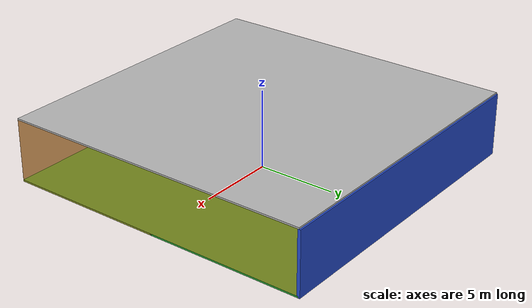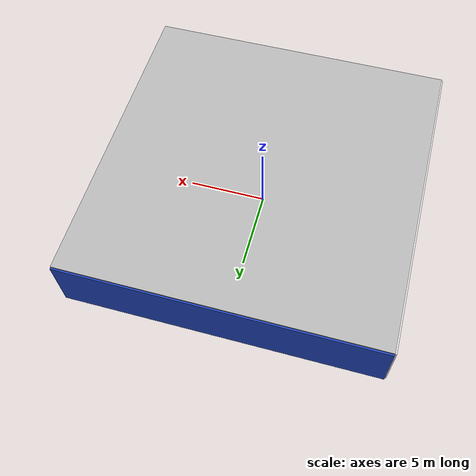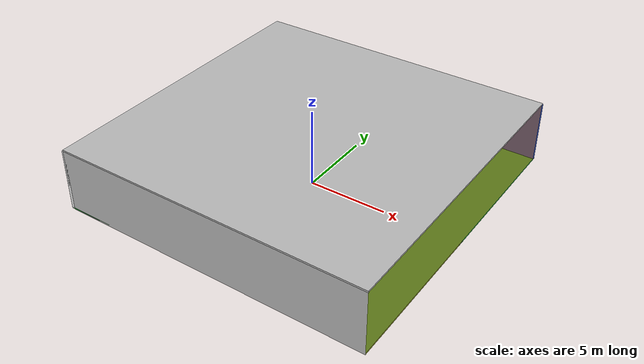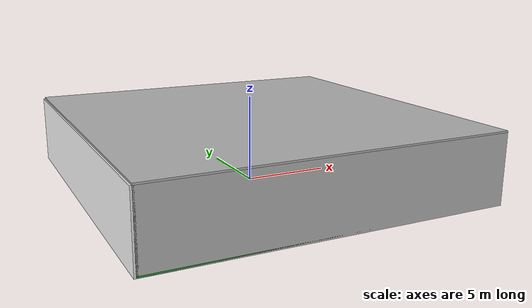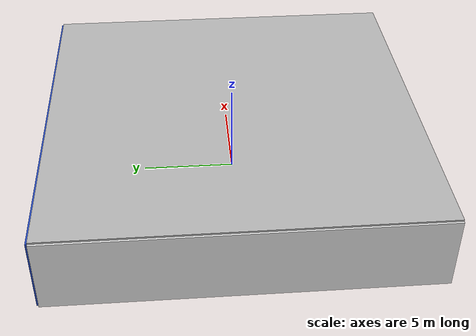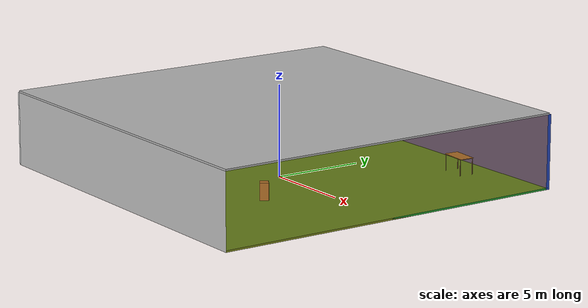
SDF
<sdf version="1.4">
 <world name="default">
  <physics type="ode">
   <max_step_size>0.001</max_step_size>
   <real_time_factor>1</real_time_factor>
   <real_time_update_rate>1000</real_time_update_rate>
   <gravity>0 0 -9.8</gravity>
  </physics>
  <scene><ambient>0.4 0.4 0.4 1</ambient><background>0.7 0.7 0.7 1</background><shadows>1</shadows></scene>
  <model name="Surrounding">
   <static>1</static>
   <link name="Ceiling">
    <collision name="Ceiling_Collision"><geometry><box><size>20 20 0.1</size></box></geometry></collision>
    <visual name="Ceiling_Visual">
     <geometry><box><size>20 20 0.1</size></box></geometry>
     <material>
      <script><uri>file://media/materials/scripts/gazebo.material</uri><name>Gazebo/LightOff</name></script>
     </material>
    </visual>
    <pose>0 0 4.05 0 0 0</pose>
   </link>
   <link name="Wall_South">
    <collision name="Wall_South_Collision">
     <geometry><box><size>20 0 4</size></box></geometry>
     <pose>0 0 2 0 -0 0</pose>
    </collision>
    <visual name="Wall_South_Visual">
     <pose>0 0 2 0 -0 0</pose>
     <geometry><box><size>20 0 4</size></box></geometry>
     <material>
      <script><uri>file://media/materials/scripts/gazebo.material</uri><name>Gazebo/CloudySky</name></script>
     </material>
    </visual>
    <velocity_decay><linear>0</linear><angular>0</angular></velocity_decay>
    <pose>0 -10 0 0 -0 0</pose>
   </link>
   <link name="Wall_East">
    <collision name="Wall_21_Collision">
     <geometry><box><size>20 0 4</size></box></geometry>
     <pose>0 0 2 0 -0 0</pose>
    </collision>
    <visual name="Wall_21_Visual">
     <pose>0 0 2 0 -0 0</pose>
     <geometry><box><size>20 0 4</size></box></geometry>
     <material>
      <script>
       <uri>file://media/materials/scripts/gazebo.material</uri>
       <name>Gazebo/OrangeTransparent</name>
      </script>
     </material>
    </visual>
    <velocity_decay><linear>0</linear><angular>0</angular></velocity_decay>
    <pose>10 0 0 0 -0 1.5708</pose>
   </link>
   <link name="Wall_North">
    <collision name="Wall_22_Collision">
     <geometry><box><size>20 0.2 4</size></box></geometry>
     <pose>0 0 2 0 -0 0</pose>
    </collision>
    <visual name="Wall_22_Visual">
     <pose>0 0 2 0 -0 0</pose>
     <geometry><box><size>20 0.2 4</size></box></geometry>
     <material>
      <script><uri>file://media/materials/scripts/gazebo.material</uri><name>Gazebo/BlueLaser</name></script>
     </material>
    </visual>
    <velocity_decay><linear>0</linear><angular>0</angular></velocity_decay>
    <pose>0 10 0 0 -0 0</pose>
   </link>
   <link name="Wall_West">
    <collision name="Wall_23_Collision">
     <geometry><box><size>20 0.2 4</size></box></geometry>
     <pose>0 0 2 0 -0 0</pose>
    </collision>
    <visual name="Wall_23_Visual">
     <pose>0 0 2 0 -0 0</pose>
     <geometry><box><size>20 0.2 4</size></box></geometry>
     <material>
      <script><uri>file://media/materials/scripts/gazebo.material</uri><name>Gazebo/WhiteGlow</name></script>
     </material>
    </visual>
    <velocity_decay><linear>0</linear><angular>0</angular></velocity_decay>
    <pose>-10 0 0 0 0 -1.5708</pose>
   </link>
   <link name="Ground_link">
    <collision name="collision">
     <pose>0 0 .05 0 -0 0</pose>
     <geometry><box><size>20 20 0.1</size></box></geometry>
    </collision>
    <visual name="visual">
     <pose>0 0 .05 0 -0 0</pose>
     <geometry><box><size>20 20 0.1</size></box></geometry>
     <material>
      <script><uri>file://media/materials/scripts/gazebo.material</uri><name>Gazebo/Green</name></script>
     </material>
    </visual>
   </link>
   <static>1</static>
  </model>
  <spherical_coordinates>
   <surface_model>EARTH_WGS84</surface_model>
   <latitude_deg>0</latitude_deg>
   <longitude_deg>0</longitude_deg>
   <elevation>0</elevation>
   <heading_deg>0</heading_deg>
  </spherical_coordinates>
  <light name="lightball_0" type="diffuse">
   <diffuse>0.8 0.8 0.8 1</diffuse>
   <specular>0.2 0.2 0.2 1</specular>
   <attenuation>
    <range>100</range>
    <constant>0.7</constant>
    <linear>0.01</linear>
    <quadratic>0.001</quadratic>
   </attenuation>
   <direction>-0.5 0.1 -0.9</direction>
   <pose>-3.802342914 -2.92208251198 0.622768293052 0 0 0</pose>
  </light>
  <light name="lightball_1" type="diffuse">
   <diffuse>0.8 0.8 0.8 1</diffuse>
   <specular>0.2 0.2 0.2 1</specular>
   <attenuation>
    <range>100</range>
    <constant>0.7</constant>
    <linear>0.01</linear>
    <quadratic>0.001</quadratic>
   </attenuation>
   <direction>-0.5 0.1 -0.9</direction>
   <pose>5.66766655857 -2.56593654124 1.29740564146 0 0 0</pose>
  </light>
  <light name="lightball_2" type="diffuse">
   <diffuse>0.8 0.8 0.8 1</diffuse>
   <specular>0.2 0.2 0.2 1</specular>
   <attenuation>
    <range>100</range>
    <constant>0.7</constant>
    <linear>0.01</linear>
    <quadratic>0.001</quadratic>
   </attenuation>
   <direction>-0.5 0.1 -0.9</direction>
   <pose>4.33698744134 -6.42857986336 3.68468982438 0 0 0</pose>
  </light>
  <light name="lightball_3" type="diffuse">
   <diffuse>0.8 0.8 0.8 1</diffuse>
   <specular>0.2 0.2 0.2 1</specular>
   <attenuation>
    <range>100</range>
    <constant>0.7</constant>
    <linear>0.01</linear>
    <quadratic>0.001</quadratic>
   </attenuation>
   <direction>-0.5 0.1 -0.9</direction>
   <pose>-9.00403103839 -3.12786745086 2.12413442978 0 0 0</pose>
  </light>
  <light name="lightball_4" type="diffuse">
   <diffuse>0.8 0.8 0.8 1</diffuse>
   <specular>0.2 0.2 0.2 1</specular>
   <attenuation>
    <range>100</range>
    <constant>0.7</constant>
    <linear>0.01</linear>
    <quadratic>0.001</quadratic>
   </attenuation>
   <direction>-0.5 0.1 -0.9</direction>
   <pose>1.33346663188 1.4199852843 1.44240259187 0 0 0</pose>
  </light>
  <light name="lightball_5" type="diffuse">
   <diffuse>0.8 0.8 0.8 1</diffuse>
   <specular>0.2 0.2 0.2 1</specular>
   <attenuation>
    <range>100</range>
    <constant>0.7</constant>
    <linear>0.01</linear>
    <quadratic>0.001</quadratic>
   </attenuation>
   <direction>-0.5 0.1 -0.9</direction>
   <pose>-3.8121267218 -7.28042205115 3.79800968431 0 0 0</pose>
  </light>
  <light name="lightball_6" type="diffuse">
   <diffuse>0.8 0.8 0.8 1</diffuse>
   <specular>0.2 0.2 0.2 1</specular>
   <attenuation>
    <range>100</range>
    <constant>0.7</constant>
    <linear>0.01</linear>
    <quadratic>0.001</quadratic>
   </attenuation>
   <direction>-0.5 0.1 -0.9</direction>
   <pose>3.2337647229 -6.2904909288 3.63520197291 0 0 0</pose>
  </light>
  <light name="lightball_7" type="diffuse">
   <diffuse>0.8 0.8 0.8 1</diffuse>
   <specular>0.2 0.2 0.2 1</specular>
   <attenuation>
    <range>100</range>
    <constant>0.7</constant>
    <linear>0.01</linear>
    <quadratic>0.001</quadratic>
   </attenuation>
   <direction>-0.5 0.1 -0.9</direction>
   <pose>-7.02988230243 -6.01463755693 3.15079492884 0 0 0</pose>
  </light>
  <light name="lightball_8" type="diffuse">
   <diffuse>0.8 0.8 0.8 1</diffuse>
   <specular>0.2 0.2 0.2 1</specular>
   <attenuation>
    <range>100</range>
    <constant>0.7</constant>
    <linear>0.01</linear>
    <quadratic>0.001</quadratic>
   </attenuation>
   <direction>-0.5 0.1 -0.9</direction>
   <pose>-8.20541185947 3.22050498081 1.51813987137 0 0 0</pose>
  </light>
  <light name="lightball_9" type="diffuse">
   <diffuse>0.8 0.8 0.8 1</diffuse>
   <specular>0.2 0.2 0.2 1</specular>
   <attenuation>
    <range>100</range>
    <constant>0.7</constant>
    <linear>0.01</linear>
    <quadratic>0.001</quadratic>
   </attenuation>
   <direction>-0.5 0.1 -0.9</direction>
   <pose>3.34531172764 -0.535500546738 2.99169654094 0 0 0</pose>
  </light>
  <include>
   <uri>model://construction_cone</uri>
   <pose>-7.30364024504 -5.17568603125 0 0 0 1.59993934443</pose>
  </include>
  <include><uri>model://table</uri><pose>-6.94403004906 1.24036654828 0 0 0 3.05975041742</pose></include>
  <include>
   <uri>model://construction_cone</uri>
   <pose>-6.92957425168 4.42316097178 0 0 0 2.10945964097</pose>
  </include>
  <include><uri>model://cabinet</uri><pose>-3.30109638712 -5.30755255119 0 0 0 0.428224745292</pose></include>
  <include><uri>model://cabinet</uri><pose>-4.54267637091 -2.19066891532 0 0 0 2.16433756141</pose></include>
  <include><uri>model://cabinet</uri><pose>3.49515142146 -3.37286211349 0 0 0 0.9996738838</pose></include>
  <include><uri>model://table</uri><pose>4.93627173945 8.15745010319 0 0 0 3.06063949318</pose></include>
 </world>
</sdf>

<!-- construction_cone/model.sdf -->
<sdf version="1.5">
  <model name="Construction Cone">
    <link name="link">
      <collision name="collision">
        <geometry>
          <mesh>
            <scale>10 10 10</scale>
            <uri>file://isr-testbed/construction_cone/meshes/construction_cone.dae</uri>
          </mesh>
        </geometry>
      </collision>
      <visual name="visual">
        <geometry>
          <mesh>
            <scale>10 10 10</scale>
            <uri>file://isr-testbed/construction_cone/meshes/construction_cone.dae</uri>
          </mesh>
        </geometry>
      </visual>
    </link>
  </model>
</sdf>

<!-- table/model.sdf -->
<sdf version="1.5">
  <model name="table">
    <static>true</static>
    <link name="link">
      <collision name="surface">
        <pose>0 0 1.0 0 0 0</pose>
        <geometry>
          <box>
            <size>1.5 0.8 0.03</size>
          </box>
        </geometry>
        <surface>
          <friction>
            <ode>
              <mu>0.6</mu>
              <mu2>0.6</mu2>
            </ode>
          </friction>
        </surface>
      </collision>
      <visual name="visual1">
        <pose>0 0 1.0 0 0 0</pose>
        <geometry>
          <box>
            <size>1.5 0.8 0.03</size>
          </box>
        </geometry>
        <material>
          <script>
            <uri>model://media/materials/scripts/gazebo.material</uri>
            <name>Gazebo/Wood</name>
          </script>
        </material>
      </visual>
      <collision name="front_left_leg">
        <pose>0.68 0.38 0.5 0 0 0</pose>
        <geometry>
          <cylinder>
            <radius>0.02</radius>
            <length>1.0</length>
          </cylinder>
        </geometry>
      </collision>
      <visual name="front_left_leg">
        <pose>0.68 0.38 0.5 0 0 0</pose>
        <geometry>
          <cylinder>
            <radius>0.02</radius>
            <length>1.0</length>
          </cylinder>
        </geometry>
        <material>
          <script>
            <uri>model://media/materials/scripts/gazebo.material</uri>
            <name>Gazebo/Grey</name>
          </script>
        </material>
      </visual>
      <collision name="front_right_leg">
        <pose>0.68 -0.38 0.5 0 0 0</pose>
        <geometry>
          <cylinder>
            <radius>0.02</radius>
            <length>1.0</length>
          </cylinder>
        </geometry>
      </collision>
      <visual name="front_right_leg">
        <pose>0.68 -0.38 0.5 0 0 0</pose>
        <geometry>
          <cylinder>
            <radius>0.02</radius>
            <length>1.0</length>
          </cylinder>
        </geometry>
        <material>
          <script>
            <uri>model://media/materials/scripts/gazebo.material</uri>
            <name>Gazebo/Grey</name>
          </script>
        </material>
      </visual>
      <collision name="back_right_leg">
        <pose>-0.68 -0.38 0.5 0 0 0</pose>
        <geometry>
          <cylinder>
            <radius>0.02</radius>
            <length>1.0</length>
          </cylinder>
        </geometry>
      </collision>
      <visual name="back_right_leg">
        <pose>-0.68 -0.38 0.5 0 0 0</pose>
        <geometry>
          <cylinder>
            <radius>0.02</radius>
            <length>1.0</length>
          </cylinder>
        </geometry>
        <material>
          <script>
            <uri>model://media/materials/scripts/gazebo.material</uri>
            <name>Gazebo/Grey</name>
          </script>
        </material>
      </visual>
      <collision name="back_left_leg">
        <pose>-0.68 0.38 0.5 0 0 0</pose>
        <geometry>
          <cylinder>
            <radius>0.02</radius>
            <length>1.0</length>
          </cylinder>
        </geometry>
      </collision>
      <visual name="back_left_leg">
        <pose>-0.68 0.38 0.5 0 0 0</pose>
        <geometry>
          <cylinder>
            <radius>0.02</radius>
            <length>1.0</length>
          </cylinder>
        </geometry>
        <material>
          <script>
            <uri>model://media/materials/scripts/gazebo.material</uri>
            <name>Gazebo/Grey</name>
          </script>
        </material>
      </visual>
    </link>
  </model>
</sdf>

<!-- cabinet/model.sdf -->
<sdf version="1.5">
  <model name="cabinet">
    <static>true</static>
    <link name="cabinet_bottom_plate">
      <inertial>
        <pose>0 0 -1 0 0 0</pose>
        <inertia>
          <ixx>2.050000</ixx>
          <ixy>0</ixy>
          <ixz>0</ixz>
          <iyy>2.050000</iyy>
          <iyz>0</iyz>
          <izz>2.050000</izz>
        </inertia>
        <mass>25.000000</mass>
      </inertial>
      <collision name="cabinet_bottom_plate_geom">
        <pose>0 0 0.010000 0 0 0</pose>
        <geometry>
          <box>
            <size>0.450000 0.450000 0.020000</size>
          </box>
        </geometry>
      </collision>
      <visual name="cabinet_bottom_plate_geom_visual">
        <pose>0 0 0.010000 0 0 0</pose>
        <geometry>
          <box>
            <size>0.450000 0.450000 0.020000</size>
          </box>
        </geometry>
        <material>
          <script>
            <uri>model://media/materials/scripts/gazebo.material</uri>
            <name>Gazebo/Wood</name>
          </script>
        </material>
      </visual>
      <collision name="cabinet_bottom_plate_geom_cabinet_back_plate">
        <pose>0.235000 0 0.510000 0 0 0</pose>
        <geometry>
          <box>
            <size>0.020000 0.450000 1.020000</size>
          </box>
        </geometry>
      </collision>
      <visual name="cabinet_bottom_plate_geom_cabinet_back_plate_visual">
        <pose>0.235000 0 0.510000 0 0 0</pose>
        <geometry>
          <box>
            <size>0.020000 0.450000 1.020000</size>
          </box>
        </geometry>
        <material>
          <script>
            <uri>model://media/materials/scripts/gazebo.material</uri>
            <name>Gazebo/Wood</name>
          </script>
        </material>
      </visual>
      <collision name="cabinet_bottom_plate_geom_cabinet_left_plate">
        <pose>0 0.235000 0.510000 0 0 0</pose>
        <geometry>
          <box>
            <size>0.450000 0.020000 1.020000</size>
          </box>
        </geometry>
      </collision>
      <visual name="cabinet_bottom_plate_geom_cabinet_left_plate_visual">
        <pose>0 0.235000 0.510000 0 0 0</pose>
        <geometry>
          <box>
            <size>0.450000 0.020000 1.020000</size>
          </box>
        </geometry>
        <material>
          <script>
            <uri>model://media/materials/scripts/gazebo.material</uri>
            <name>Gazebo/Wood</name>
          </script>
        </material>
      </visual>
      <collision name="cabinet_bottom_plate_geom_cabinet_middle_plate">
        <pose>0 0 0.510000 0 0 0</pose>
        <geometry>
          <box>
            <size>0.450000 0.450000 0.020000</size>
          </box>
        </geometry>
      </collision>
      <visual name="cabinet_bottom_plate_geom_cabinet_middle_plate_visual">
        <pose>0 0 0.510000 0 0 0</pose>
        <geometry>
          <box>
            <size>0.450000 0.450000 0.020000</size>
          </box>
        </geometry>
        <material>
          <script>
            <uri>model://media/materials/scripts/gazebo.material</uri>
            <name>Gazebo/Wood</name>
          </script>
        </material>
      </visual>
      <collision name="cabinet_bottom_plate_geom_cabinet_right_plate">
        <pose>0 -0.235000 0.510000 0 0 0</pose>
        <geometry>
          <box>
            <size>0.450000 0.020000 1.020000</size>
          </box>
        </geometry>
      </collision>
      <visual name="cabinet_bottom_plate_geom_cabinet_right_plate_visual">
        <pose>0 -0.235000 0.510000 0 0 0</pose>
        <geometry>
          <box>
            <size>0.450000 0.020000 1.020000</size>
          </box>
        </geometry>
        <material>
          <script>
            <uri>model://media/materials/scripts/gazebo.material</uri>
            <name>Gazebo/Wood</name>
          </script>
        </material>
      </visual>
      <collision name="cabinet_bottom_plate_geom_cabinet_top_plate">
        <pose>0 0 1.010000 0 0 0</pose>
        <geometry>
          <box>
            <size>0.450000 0.450000 0.020000</size>
          </box>
        </geometry>
      </collision>
      <visual name="cabinet_bottom_plate_geom_cabinet_top_plate_visual">
        <pose>0 0 1.010000 0 0 0</pose>
        <geometry>
          <box>
            <size>0.450000 0.450000 0.020000</size>
          </box>
        </geometry>
        <material>
          <script>
            <uri>model://media/materials/scripts/gazebo.material</uri>
            <name>Gazebo/Wood</name>
          </script>
        </material>
      </visual>
    </link>
  </model>
</sdf>
